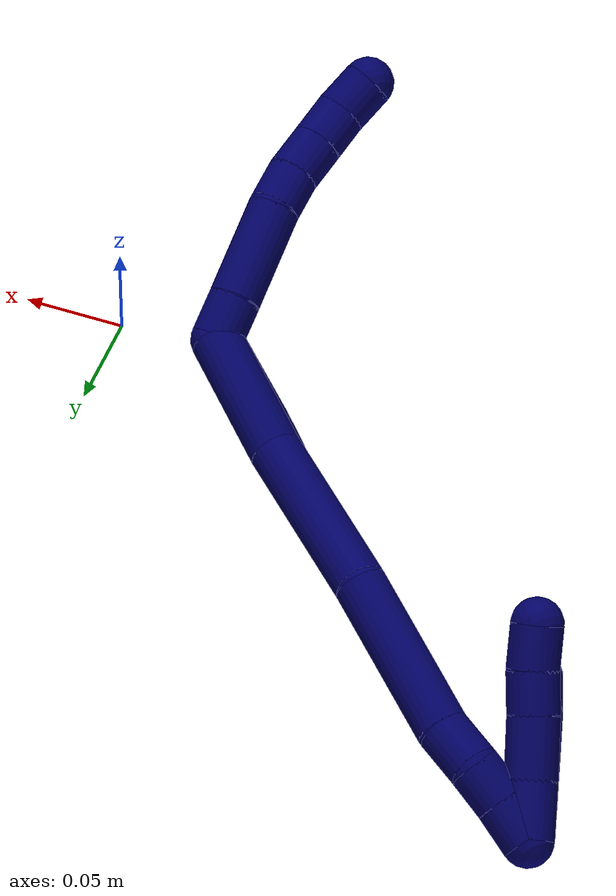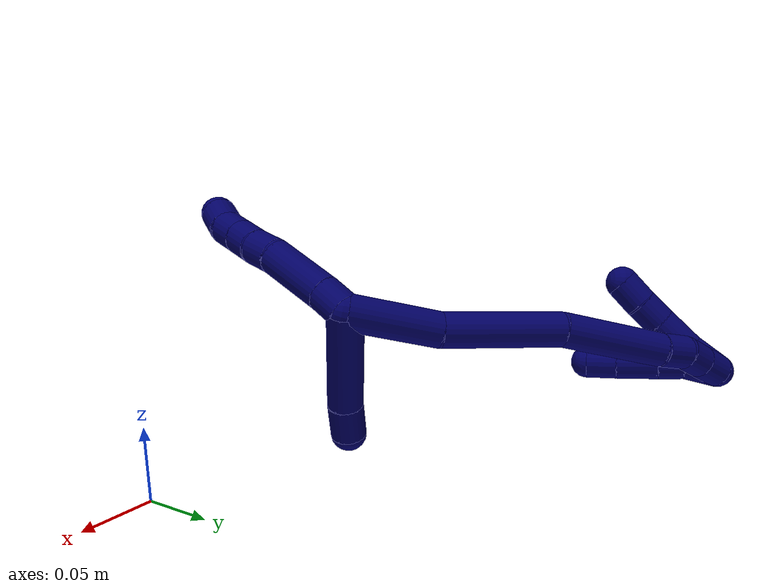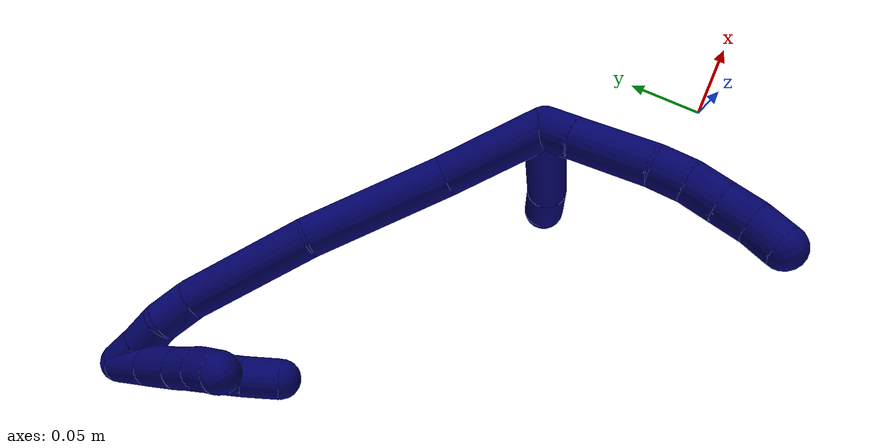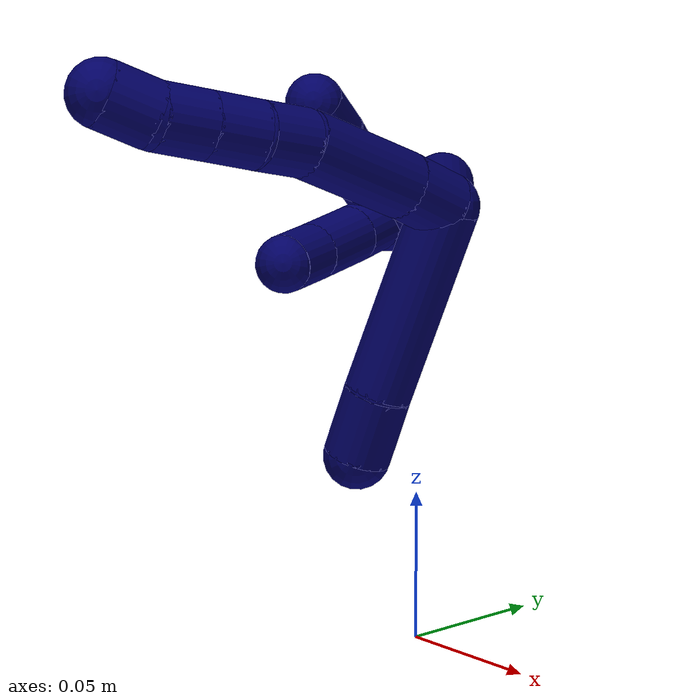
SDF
<sdf version="1.7">
 <world name="default">
  <model name="7">
   <static>0</static>
   <link name="7">
    <collision name="collision-cylinder-e_1_2_8">
     <pose>-0.002938 -0.007619 -0.006762 2.29666 -0.280786 -0.609184</pose>
     <geometry><cylinder><radius>0.0125</radius><length>0.021203</length></cylinder></geometry>
     <surface>
      <friction><ode><mu>1.16</mu><mu2>1.16</mu2><slip1>0</slip1><slip2>0</slip2></ode></friction>
      <contact><ode><kp>1e+06</kp><kd>1</kd><max_vel>0</max_vel><min_depth>0.001</min_depth></ode></contact>
     </surface>
    </collision>
    <visual name="visual-cylinder-e_1_2_8">
     <pose>-0.002938 -0.007619 -0.006762 2.29666 -0.280786 -0.609184</pose>
     <geometry><cylinder><radius>0.0125</radius><length>0.021203</length></cylinder></geometry>
     <material><ambient>0.003922 0 0.403922 1</ambient></material>
    </visual>
    <collision name="collision-cylinder-e_2_8_9">
     <pose>-0.01362 -0.031748 -0.029613 2.34329 -0.324069 -0.739459</pose>
     <geometry><cylinder><radius>0.0125</radius><length>0.048639</length></cylinder></geometry>
     <surface>
      <friction><ode><mu>1.16</mu><mu2>1.16</mu2><slip1>0</slip1><slip2>0</slip2></ode></friction>
      <contact><ode><kp>1e+06</kp><kd>1</kd><max_vel>0</max_vel><min_depth>0.001</min_depth></ode></contact>
     </surface>
    </collision>
    <visual name="visual-cylinder-e_2_8_9">
     <pose>-0.01362 -0.031748 -0.029613 2.34329 -0.324069 -0.739459</pose>
     <geometry><cylinder><radius>0.0125</radius><length>0.048639</length></cylinder></geometry>
     <material><ambient>0.003922 0 0.403922 1</ambient></material>
    </visual>
    <collision name="collision-cylinder-e_3_9_10">
     <pose>-0.026236 -0.054344 -0.051997 2.37307 -0.507812 -1.14113</pose>
     <geometry><cylinder><radius>0.0125</radius><length>0.020039</length></cylinder></geometry>
     <surface>
      <friction><ode><mu>1.16</mu><mu2>1.16</mu2><slip1>0</slip1><slip2>0</slip2></ode></friction>
      <contact><ode><kp>1e+06</kp><kd>1</kd><max_vel>0</max_vel><min_depth>0.001</min_depth></ode></contact>
     </surface>
    </collision>
    <visual name="visual-cylinder-e_3_9_10">
     <pose>-0.026236 -0.054344 -0.051997 2.37307 -0.507812 -1.14113</pose>
     <geometry><cylinder><radius>0.0125</radius><length>0.020039</length></cylinder></geometry>
     <material><ambient>0.003922 0 0.403922 1</ambient></material>
    </visual>
    <collision name="collision-cylinder-e_4_10_11">
     <pose>-0.036326 -0.067321 -0.063356 2.20455 -0.547848 -1.01364</pose>
     <geometry><cylinder><radius>0.0125</radius><length>0.020037</length></cylinder></geometry>
     <surface>
      <friction><ode><mu>1.16</mu><mu2>1.16</mu2><slip1>0</slip1><slip2>0</slip2></ode></friction>
      <contact><ode><kp>1e+06</kp><kd>1</kd><max_vel>0</max_vel><min_depth>0.001</min_depth></ode></contact>
     </surface>
    </collision>
    <visual name="visual-cylinder-e_4_10_11">
     <pose>-0.036326 -0.067321 -0.063356 2.20455 -0.547848 -1.01364</pose>
     <geometry><cylinder><radius>0.0125</radius><length>0.020037</length></cylinder></geometry>
     <material><ambient>0.003922 0 0.403922 1</ambient></material>
    </visual>
    <collision name="collision-cylinder-e_5_11_12">
     <pose>-0.046766 -0.081075 -0.073543 2.21203 -0.547556 -1.02108</pose>
     <geometry><cylinder><radius>0.0125</radius><length>0.02006</length></cylinder></geometry>
     <surface>
      <friction><ode><mu>1.16</mu><mu2>1.16</mu2><slip1>0</slip1><slip2>0</slip2></ode></friction>
      <contact><ode><kp>1e+06</kp><kd>1</kd><max_vel>0</max_vel><min_depth>0.001</min_depth></ode></contact>
     </surface>
    </collision>
    <visual name="visual-cylinder-e_5_11_12">
     <pose>-0.046766 -0.081075 -0.073543 2.21203 -0.547556 -1.02108</pose>
     <geometry><cylinder><radius>0.0125</radius><length>0.02006</length></cylinder></geometry>
     <material><ambient>0.003922 0 0.403922 1</ambient></material>
    </visual>
    <collision name="collision-cylinder-e_6_12_6">
     <pose>-0.055774 -0.096488 -0.082239 1.96668 -0.387904 -0.573692</pose>
     <geometry><cylinder><radius>0.0125</radius><length>0.020022</length></cylinder></geometry>
     <surface>
      <friction><ode><mu>1.16</mu><mu2>1.16</mu2><slip1>0</slip1><slip2>0</slip2></ode></friction>
      <contact><ode><kp>1e+06</kp><kd>1</kd><max_vel>0</max_vel><min_depth>0.001</min_depth></ode></contact>
     </surface>
    </collision>
    <visual name="visual-cylinder-e_6_12_6">
     <pose>-0.055774 -0.096488 -0.082239 1.96668 -0.387904 -0.573692</pose>
     <geometry><cylinder><radius>0.0125</radius><length>0.020022</length></cylinder></geometry>
     <material><ambient>0.003922 0 0.403922 1</ambient></material>
    </visual>
    <collision name="collision-cylinder-e_1_2_13">
     <pose>-0.032292 0.015575 0.009118 -1.04117 -1.06117 0.64898</pose>
     <geometry><cylinder><radius>0.0125</radius><length>0.073987</length></cylinder></geometry>
     <surface>
      <friction><ode><mu>1.16</mu><mu2>1.16</mu2><slip1>0</slip1><slip2>0</slip2></ode></friction>
      <contact><ode><kp>1e+06</kp><kd>1</kd><max_vel>0</max_vel><min_depth>0.001</min_depth></ode></contact>
     </surface>
    </collision>
    <visual name="visual-cylinder-e_1_2_13">
     <pose>-0.032292 0.015575 0.009118 -1.04117 -1.06117 0.64898</pose>
     <geometry><cylinder><radius>0.0125</radius><length>0.073987</length></cylinder></geometry>
     <material><ambient>0.003922 0 0.403922 1</ambient></material>
    </visual>
    <collision name="collision-cylinder-e_2_13_5">
     <pose>-0.075491 0.036758 0.022568 -0.91299 -0.994589 0.521009</pose>
     <geometry><cylinder><radius>0.0125</radius><length>0.026013</length></cylinder></geometry>
     <surface>
      <friction><ode><mu>1.16</mu><mu2>1.16</mu2><slip1>0</slip1><slip2>0</slip2></ode></friction>
      <contact><ode><kp>1e+06</kp><kd>1</kd><max_vel>0</max_vel><min_depth>0.001</min_depth></ode></contact>
     </surface>
    </collision>
    <visual name="visual-cylinder-e_2_13_5">
     <pose>-0.075491 0.036758 0.022568 -0.91299 -0.994589 0.521009</pose>
     <geometry><cylinder><radius>0.0125</radius><length>0.026013</length></cylinder></geometry>
     <material><ambient>0.003922 0 0.403922 1</ambient></material>
    </visual>
    <collision name="collision-cylinder-e_1_2_14">
     <pose>-0.000311 -0.000218 0.032419 0.006731 -0.009597 -3.2e-05</pose>
     <geometry><cylinder><radius>0.0125</radius><length>0.064843</length></cylinder></geometry>
     <surface>
      <friction><ode><mu>1.16</mu><mu2>1.16</mu2><slip1>0</slip1><slip2>0</slip2></ode></friction>
      <contact><ode><kp>1e+06</kp><kd>1</kd><max_vel>0</max_vel><min_depth>0.001</min_depth></ode></contact>
     </surface>
    </collision>
    <visual name="visual-cylinder-e_1_2_14">
     <pose>-0.000311 -0.000218 0.032419 0.006731 -0.009597 -3.2e-05</pose>
     <geometry><cylinder><radius>0.0125</radius><length>0.064843</length></cylinder></geometry>
     <material><ambient>0.003922 0 0.403922 1</ambient></material>
    </visual>
    <collision name="collision-cylinder-e_2_14_15">
     <pose>0.004638 -0.006735 0.107867 0.145342 0.120383 0.008774</pose>
     <geometry><cylinder><radius>0.0125</radius><length>0.087608</length></cylinder></geometry>
     <surface>
      <friction><ode><mu>1.16</mu><mu2>1.16</mu2><slip1>0</slip1><slip2>0</slip2></ode></friction>
      <contact><ode><kp>1e+06</kp><kd>1</kd><max_vel>0</max_vel><min_depth>0.001</min_depth></ode></contact>
     </surface>
    </collision>
    <visual name="visual-cylinder-e_2_14_15">
     <pose>0.004638 -0.006735 0.107867 0.145342 0.120383 0.008774</pose>
     <geometry><cylinder><radius>0.0125</radius><length>0.087608</length></cylinder></geometry>
     <material><ambient>0.003922 0 0.403922 1</ambient></material>
    </visual>
    <collision name="collision-cylinder-e_3_15_16">
     <pose>0.008351 -0.01396 0.191862 0.022637 -0.037757 -0.000427</pose>
     <geometry><cylinder><radius>0.0125</radius><length>0.082013</length></cylinder></geometry>
     <surface>
      <friction><ode><mu>1.16</mu><mu2>1.16</mu2><slip1>0</slip1><slip2>0</slip2></ode></friction>
      <contact><ode><kp>1e+06</kp><kd>1</kd><max_vel>0</max_vel><min_depth>0.001</min_depth></ode></contact>
     </surface>
    </collision>
    <visual name="visual-cylinder-e_3_15_16">
     <pose>0.008351 -0.01396 0.191862 0.022637 -0.037757 -0.000427</pose>
     <geometry><cylinder><radius>0.0125</radius><length>0.082013</length></cylinder></geometry>
     <material><ambient>0.003922 0 0.403922 1</ambient></material>
    </visual>
    <collision name="collision-cylinder-e_4_16_17">
     <pose>0.005506 -0.016867 0.244304 0.170803 -0.110888 -0.009503</pose>
     <geometry><cylinder><radius>0.0125</radius><length>0.023434</length></cylinder></geometry>
     <surface>
      <friction><ode><mu>1.16</mu><mu2>1.16</mu2><slip1>0</slip1><slip2>0</slip2></ode></friction>
      <contact><ode><kp>1e+06</kp><kd>1</kd><max_vel>0</max_vel><min_depth>0.001</min_depth></ode></contact>
     </surface>
    </collision>
    <visual name="visual-cylinder-e_4_16_17">
     <pose>0.005506 -0.016867 0.244304 0.170803 -0.110888 -0.009503</pose>
     <geometry><cylinder><radius>0.0125</radius><length>0.023434</length></cylinder></geometry>
     <material><ambient>0.003922 0 0.403922 1</ambient></material>
    </visual>
    <collision name="collision-cylinder-e_5_17_18">
     <pose>0.000439 -0.019006 0.26543 0.016456 -0.372441 -0.0031</pose>
     <geometry><cylinder><radius>0.0125</radius><length>0.020723</length></cylinder></geometry>
     <surface>
      <friction><ode><mu>1.16</mu><mu2>1.16</mu2><slip1>0</slip1><slip2>0</slip2></ode></friction>
      <contact><ode><kp>1e+06</kp><kd>1</kd><max_vel>0</max_vel><min_depth>0.001</min_depth></ode></contact>
     </surface>
    </collision>
    <visual name="visual-cylinder-e_5_17_18">
     <pose>0.000439 -0.019006 0.26543 0.016456 -0.372441 -0.0031</pose>
     <geometry><cylinder><radius>0.0125</radius><length>0.020723</length></cylinder></geometry>
     <material><ambient>0.003922 0 0.403922 1</ambient></material>
    </visual>
    <collision name="collision-cylinder-e_6_18_1">
     <pose>-0.006752 -0.018771 0.2852 -0.038886 -0.325724 0.006391</pose>
     <geometry><cylinder><radius>0.0125</radius><length>0.021379</length></cylinder></geometry>
     <surface>
      <friction><ode><mu>1.16</mu><mu2>1.16</mu2><slip1>0</slip1><slip2>0</slip2></ode></friction>
      <contact><ode><kp>1e+06</kp><kd>1</kd><max_vel>0</max_vel><min_depth>0.001</min_depth></ode></contact>
     </surface>
    </collision>
    <visual name="visual-cylinder-e_6_18_1">
     <pose>-0.006752 -0.018771 0.2852 -0.038886 -0.325724 0.006391</pose>
     <geometry><cylinder><radius>0.0125</radius><length>0.021379</length></cylinder></geometry>
     <material><ambient>0.003922 0 0.403922 1</ambient></material>
    </visual>
    <collision name="collision-cylinder-e_1_1_19">
     <pose>-0.014704 -0.022314 0.284778 2.7841 -0.382886 -1.64096</pose>
     <geometry><cylinder><radius>0.0125</radius><length>0.024262</length></cylinder></geometry>
     <surface>
      <friction><ode><mu>1.16</mu><mu2>1.16</mu2><slip1>0</slip1><slip2>0</slip2></ode></friction>
      <contact><ode><kp>1e+06</kp><kd>1</kd><max_vel>0</max_vel><min_depth>0.001</min_depth></ode></contact>
     </surface>
    </collision>
    <visual name="visual-cylinder-e_1_1_19">
     <pose>-0.014704 -0.022314 0.284778 2.7841 -0.382886 -1.64096</pose>
     <geometry><cylinder><radius>0.0125</radius><length>0.024262</length></cylinder></geometry>
     <material><ambient>0.003922 0 0.403922 1</ambient></material>
    </visual>
    <collision name="collision-cylinder-e_2_19_20">
     <pose>-0.024896 -0.027646 0.266001 2.97397 -0.595447 -2.60714</pose>
     <geometry><cylinder><radius>0.0125</radius><length>0.02018</length></cylinder></geometry>
     <surface>
      <friction><ode><mu>1.16</mu><mu2>1.16</mu2><slip1>0</slip1><slip2>0</slip2></ode></friction>
      <contact><ode><kp>1e+06</kp><kd>1</kd><max_vel>0</max_vel><min_depth>0.001</min_depth></ode></contact>
     </surface>
    </collision>
    <visual name="visual-cylinder-e_2_19_20">
     <pose>-0.024896 -0.027646 0.266001 2.97397 -0.595447 -2.60714</pose>
     <geometry><cylinder><radius>0.0125</radius><length>0.02018</length></cylinder></geometry>
     <material><ambient>0.003922 0 0.403922 1</ambient></material>
    </visual>
    <collision name="collision-cylinder-e_3_20_21">
     <pose>-0.039289 -0.031485 0.244476 2.95956 -0.573832 -2.54162</pose>
     <geometry><cylinder><radius>0.0125</radius><length>0.032176</length></cylinder></geometry>
     <surface>
      <friction><ode><mu>1.16</mu><mu2>1.16</mu2><slip1>0</slip1><slip2>0</slip2></ode></friction>
      <contact><ode><kp>1e+06</kp><kd>1</kd><max_vel>0</max_vel><min_depth>0.001</min_depth></ode></contact>
     </surface>
    </collision>
    <visual name="visual-cylinder-e_3_20_21">
     <pose>-0.039289 -0.031485 0.244476 2.95956 -0.573832 -2.54162</pose>
     <geometry><cylinder><radius>0.0125</radius><length>0.032176</length></cylinder></geometry>
     <material><ambient>0.003922 0 0.403922 1</ambient></material>
    </visual>
    <collision name="collision-cylinder-e_4_21_4">
     <pose>-0.053788 -0.035646 0.221164 2.97214 -0.51577 -2.51855</pose>
     <geometry><cylinder><radius>0.0125</radius><length>0.023382</length></cylinder></geometry>
     <surface>
      <friction><ode><mu>1.16</mu><mu2>1.16</mu2><slip1>0</slip1><slip2>0</slip2></ode></friction>
      <contact><ode><kp>1e+06</kp><kd>1</kd><max_vel>0</max_vel><min_depth>0.001</min_depth></ode></contact>
     </surface>
    </collision>
    <visual name="visual-cylinder-e_4_21_4">
     <pose>-0.053788 -0.035646 0.221164 2.97214 -0.51577 -2.51855</pose>
     <geometry><cylinder><radius>0.0125</radius><length>0.023382</length></cylinder></geometry>
     <material><ambient>0.003922 0 0.403922 1</ambient></material>
    </visual>
    <collision name="collision-cylinder-e_1_1_22">
     <pose>-0.010588 -0.026083 0.283783 2.55272 -0.029962 -0.098729</pose>
     <geometry><cylinder><radius>0.0125</radius><length>0.02776</length></cylinder></geometry>
     <surface>
      <friction><ode><mu>1.16</mu><mu2>1.16</mu2><slip1>0</slip1><slip2>0</slip2></ode></friction>
      <contact><ode><kp>1e+06</kp><kd>1</kd><max_vel>0</max_vel><min_depth>0.001</min_depth></ode></contact>
     </surface>
    </collision>
    <visual name="visual-cylinder-e_1_1_22">
     <pose>-0.010588 -0.026083 0.283783 2.55272 -0.029962 -0.098729</pose>
     <geometry><cylinder><radius>0.0125</radius><length>0.02776</length></cylinder></geometry>
     <material><ambient>0.003922 0 0.403922 1</ambient></material>
    </visual>
    <collision name="collision-cylinder-e_2_22_23">
     <pose>-0.009682 -0.042882 0.260253 2.49279 0.087638 0.259313</pose>
     <geometry><cylinder><radius>0.0125</radius><length>0.030217</length></cylinder></geometry>
     <surface>
      <friction><ode><mu>1.16</mu><mu2>1.16</mu2><slip1>0</slip1><slip2>0</slip2></ode></friction>
      <contact><ode><kp>1e+06</kp><kd>1</kd><max_vel>0</max_vel><min_depth>0.001</min_depth></ode></contact>
     </surface>
    </collision>
    <visual name="visual-cylinder-e_2_22_23">
     <pose>-0.009682 -0.042882 0.260253 2.49279 0.087638 0.259313</pose>
     <geometry><cylinder><radius>0.0125</radius><length>0.030217</length></cylinder></geometry>
     <material><ambient>0.003922 0 0.403922 1</ambient></material>
    </visual>
    <collision name="collision-cylinder-e_3_23_24">
     <pose>-0.006877 -0.057851 0.23987 2.53079 0.143738 0.449015</pose>
     <geometry><cylinder><radius>0.0125</radius><length>0.0207</length></cylinder></geometry>
     <surface>
      <friction><ode><mu>1.16</mu><mu2>1.16</mu2><slip1>0</slip1><slip2>0</slip2></ode></friction>
      <contact><ode><kp>1e+06</kp><kd>1</kd><max_vel>0</max_vel><min_depth>0.001</min_depth></ode></contact>
     </surface>
    </collision>
    <visual name="visual-cylinder-e_3_23_24">
     <pose>-0.006877 -0.057851 0.23987 2.53079 0.143738 0.449015</pose>
     <geometry><cylinder><radius>0.0125</radius><length>0.0207</length></cylinder></geometry>
     <material><ambient>0.003922 0 0.403922 1</ambient></material>
    </visual>
    <collision name="collision-cylinder-e_4_24_3">
     <pose>-0.00429 -0.070796 0.223576 2.41175 0.103736 0.270125</pose>
     <geometry><cylinder><radius>0.0125</radius><length>0.021324</length></cylinder></geometry>
     <surface>
      <friction><ode><mu>1.16</mu><mu2>1.16</mu2><slip1>0</slip1><slip2>0</slip2></ode></friction>
      <contact><ode><kp>1e+06</kp><kd>1</kd><max_vel>0</max_vel><min_depth>0.001</min_depth></ode></contact>
     </surface>
    </collision>
    <visual name="visual-cylinder-e_4_24_3">
     <pose>-0.00429 -0.070796 0.223576 2.41175 0.103736 0.270125</pose>
     <geometry><cylinder><radius>0.0125</radius><length>0.021324</length></cylinder></geometry>
     <material><ambient>0.003922 0 0.403922 1</ambient></material>
    </visual>
    <collision name="collision-sphere-3">
     <pose>-0.003186 -0.077867 0.215672 0 -0 0</pose>
     <geometry><sphere><radius>0.0125</radius></sphere></geometry>
     <surface>
      <friction><ode><mu>1.16</mu><mu2>1.16</mu2><slip1>0</slip1><slip2>0</slip2></ode></friction>
      <contact><ode><kp>1e+06</kp><kd>1</kd><max_vel>0</max_vel><min_depth>0.001</min_depth></ode></contact>
     </surface>
    </collision>
    <visual name="visual-sphere-3">
     <pose>-0.003186 -0.077867 0.215672 0 -0 0</pose>
     <geometry><sphere><radius>0.0125</radius></sphere></geometry>
     <material><ambient>0.003922 0 0.403922 1</ambient></material>
    </visual>
    <collision name="collision-sphere-24">
     <pose>-0.005394 -0.063726 0.231479 0 -0 0</pose>
     <geometry><sphere><radius>0.0125</radius></sphere></geometry>
     <surface>
      <friction><ode><mu>1.16</mu><mu2>1.16</mu2><slip1>0</slip1><slip2>0</slip2></ode></friction>
      <contact><ode><kp>1e+06</kp><kd>1</kd><max_vel>0</max_vel><min_depth>0.001</min_depth></ode></contact>
     </surface>
    </collision>
    <visual name="visual-sphere-24">
     <pose>-0.005394 -0.063726 0.231479 0 -0 0</pose>
     <geometry><sphere><radius>0.0125</radius></sphere></geometry>
     <material><ambient>0.003922 0 0.403922 1</ambient></material>
    </visual>
    <collision name="collision-sphere-23">
     <pose>-0.008359 -0.051976 0.248261 0 -0 0</pose>
     <geometry><sphere><radius>0.0125</radius></sphere></geometry>
     <surface>
      <friction><ode><mu>1.16</mu><mu2>1.16</mu2><slip1>0</slip1><slip2>0</slip2></ode></friction>
      <contact><ode><kp>1e+06</kp><kd>1</kd><max_vel>0</max_vel><min_depth>0.001</min_depth></ode></contact>
     </surface>
    </collision>
    <visual name="visual-sphere-23">
     <pose>-0.008359 -0.051976 0.248261 0 -0 0</pose>
     <geometry><sphere><radius>0.0125</radius></sphere></geometry>
     <material><ambient>0.003922 0 0.403922 1</ambient></material>
    </visual>
    <collision name="collision-sphere-22">
     <pose>-0.011004 -0.033788 0.272246 0 -0 0</pose>
     <geometry><sphere><radius>0.0125</radius></sphere></geometry>
     <surface>
      <friction><ode><mu>1.16</mu><mu2>1.16</mu2><slip1>0</slip1><slip2>0</slip2></ode></friction>
      <contact><ode><kp>1e+06</kp><kd>1</kd><max_vel>0</max_vel><min_depth>0.001</min_depth></ode></contact>
     </surface>
    </collision>
    <visual name="visual-sphere-22">
     <pose>-0.011004 -0.033788 0.272246 0 -0 0</pose>
     <geometry><sphere><radius>0.0125</radius></sphere></geometry>
     <material><ambient>0.003922 0 0.403922 1</ambient></material>
    </visual>
    <collision name="collision-sphere-4">
     <pose>-0.059554 -0.037361 0.211139 0 -0 0</pose>
     <geometry><sphere><radius>0.0125</radius></sphere></geometry>
     <surface>
      <friction><ode><mu>1.16</mu><mu2>1.16</mu2><slip1>0</slip1><slip2>0</slip2></ode></friction>
      <contact><ode><kp>1e+06</kp><kd>1</kd><max_vel>0</max_vel><min_depth>0.001</min_depth></ode></contact>
     </surface>
    </collision>
    <visual name="visual-sphere-4">
     <pose>-0.059554 -0.037361 0.211139 0 -0 0</pose>
     <geometry><sphere><radius>0.0125</radius></sphere></geometry>
     <material><ambient>0.003922 0 0.403922 1</ambient></material>
    </visual>
    <collision name="collision-sphere-21">
     <pose>-0.048022 -0.033931 0.231188 0 -0 0</pose>
     <geometry><sphere><radius>0.0125</radius></sphere></geometry>
     <surface>
      <friction><ode><mu>1.16</mu><mu2>1.16</mu2><slip1>0</slip1><slip2>0</slip2></ode></friction>
      <contact><ode><kp>1e+06</kp><kd>1</kd><max_vel>0</max_vel><min_depth>0.001</min_depth></ode></contact>
     </surface>
    </collision>
    <visual name="visual-sphere-21">
     <pose>-0.048022 -0.033931 0.231188 0 -0 0</pose>
     <geometry><sphere><radius>0.0125</radius></sphere></geometry>
     <material><ambient>0.003922 0 0.403922 1</ambient></material>
    </visual>
    <collision name="collision-sphere-20">
     <pose>-0.030555 -0.029039 0.257765 0 -0 0</pose>
     <geometry><sphere><radius>0.0125</radius></sphere></geometry>
     <surface>
      <friction><ode><mu>1.16</mu><mu2>1.16</mu2><slip1>0</slip1><slip2>0</slip2></ode></friction>
      <contact><ode><kp>1e+06</kp><kd>1</kd><max_vel>0</max_vel><min_depth>0.001</min_depth></ode></contact>
     </surface>
    </collision>
    <visual name="visual-sphere-20">
     <pose>-0.030555 -0.029039 0.257765 0 -0 0</pose>
     <geometry><sphere><radius>0.0125</radius></sphere></geometry>
     <material><ambient>0.003922 0 0.403922 1</ambient></material>
    </visual>
    <collision name="collision-sphere-12">
     <pose>-0.051988 -0.087937 -0.078665 0 -0 0</pose>
     <geometry><sphere><radius>0.0125</radius></sphere></geometry>
     <surface>
      <friction><ode><mu>1.16</mu><mu2>1.16</mu2><slip1>0</slip1><slip2>0</slip2></ode></friction>
      <contact><ode><kp>1e+06</kp><kd>1</kd><max_vel>0</max_vel><min_depth>0.001</min_depth></ode></contact>
     </surface>
    </collision>
    <visual name="visual-sphere-12">
     <pose>-0.051988 -0.087937 -0.078665 0 -0 0</pose>
     <geometry><sphere><radius>0.0125</radius></sphere></geometry>
     <material><ambient>0.003922 0 0.403922 1</ambient></material>
    </visual>
    <collision name="collision-sphere-11">
     <pose>-0.041544 -0.074212 -0.06842 0 -0 0</pose>
     <geometry><sphere><radius>0.0125</radius></sphere></geometry>
     <surface>
      <friction><ode><mu>1.16</mu><mu2>1.16</mu2><slip1>0</slip1><slip2>0</slip2></ode></friction>
      <contact><ode><kp>1e+06</kp><kd>1</kd><max_vel>0</max_vel><min_depth>0.001</min_depth></ode></contact>
     </surface>
    </collision>
    <visual name="visual-sphere-11">
     <pose>-0.041544 -0.074212 -0.06842 0 -0 0</pose>
     <geometry><sphere><radius>0.0125</radius></sphere></geometry>
     <material><ambient>0.003922 0 0.403922 1</ambient></material>
    </visual>
    <collision name="collision-sphere-10">
     <pose>-0.031108 -0.060429 -0.058291 0 -0 0</pose>
     <geometry><sphere><radius>0.0125</radius></sphere></geometry>
     <surface>
      <friction><ode><mu>1.16</mu><mu2>1.16</mu2><slip1>0</slip1><slip2>0</slip2></ode></friction>
      <contact><ode><kp>1e+06</kp><kd>1</kd><max_vel>0</max_vel><min_depth>0.001</min_depth></ode></contact>
     </surface>
    </collision>
    <visual name="visual-sphere-10">
     <pose>-0.031108 -0.060429 -0.058291 0 -0 0</pose>
     <geometry><sphere><radius>0.0125</radius></sphere></geometry>
     <material><ambient>0.003922 0 0.403922 1</ambient></material>
    </visual>
    <collision name="collision-sphere-9">
     <pose>-0.021364 -0.048258 -0.045702 0 -0 0</pose>
     <geometry><sphere><radius>0.0125</radius></sphere></geometry>
     <surface>
      <friction><ode><mu>1.16</mu><mu2>1.16</mu2><slip1>0</slip1><slip2>0</slip2></ode></friction>
      <contact><ode><kp>1e+06</kp><kd>1</kd><max_vel>0</max_vel><min_depth>0.001</min_depth></ode></contact>
     </surface>
    </collision>
    <visual name="visual-sphere-9">
     <pose>-0.021364 -0.048258 -0.045702 0 -0 0</pose>
     <geometry><sphere><radius>0.0125</radius></sphere></geometry>
     <material><ambient>0.003922 0 0.403922 1</ambient></material>
    </visual>
    <collision name="collision-sphere-2">
     <geometry><sphere><radius>0.0125</radius></sphere></geometry>
     <surface>
      <friction><ode><mu>1.16</mu><mu2>1.16</mu2><slip1>0</slip1><slip2>0</slip2></ode></friction>
      <contact><ode><kp>1e+06</kp><kd>1</kd><max_vel>0</max_vel><min_depth>0.001</min_depth></ode></contact>
     </surface>
    </collision>
    <visual name="visual-sphere-2">
     <geometry><sphere><radius>0.0125</radius></sphere></geometry>
     <material><ambient>0.003922 0 0.403922 1</ambient></material>
    </visual>
    <collision name="collision-sphere-19">
     <pose>-0.019237 -0.026252 0.274237 0 -0 0</pose>
     <geometry><sphere><radius>0.0125</radius></sphere></geometry>
     <surface>
      <friction><ode><mu>1.16</mu><mu2>1.16</mu2><slip1>0</slip1><slip2>0</slip2></ode></friction>
      <contact><ode><kp>1e+06</kp><kd>1</kd><max_vel>0</max_vel><min_depth>0.001</min_depth></ode></contact>
     </surface>
    </collision>
    <visual name="visual-sphere-19">
     <pose>-0.019237 -0.026252 0.274237 0 -0 0</pose>
     <geometry><sphere><radius>0.0125</radius></sphere></geometry>
     <material><ambient>0.003922 0 0.403922 1</ambient></material>
    </visual>
    <collision name="collision-sphere-8">
     <pose>-0.005876 -0.015238 -0.013523 0 -0 0</pose>
     <geometry><sphere><radius>0.0125</radius></sphere></geometry>
     <surface>
      <friction><ode><mu>1.16</mu><mu2>1.16</mu2><slip1>0</slip1><slip2>0</slip2></ode></friction>
      <contact><ode><kp>1e+06</kp><kd>1</kd><max_vel>0</max_vel><min_depth>0.001</min_depth></ode></contact>
     </surface>
    </collision>
    <visual name="visual-sphere-8">
     <pose>-0.005876 -0.015238 -0.013523 0 -0 0</pose>
     <geometry><sphere><radius>0.0125</radius></sphere></geometry>
     <material><ambient>0.003922 0 0.403922 1</ambient></material>
    </visual>
    <collision name="collision-sphere-6">
     <pose>-0.059561 -0.105038 -0.085812 0 -0 0</pose>
     <geometry><sphere><radius>0.0125</radius></sphere></geometry>
     <surface>
      <friction><ode><mu>1.16</mu><mu2>1.16</mu2><slip1>0</slip1><slip2>0</slip2></ode></friction>
      <contact><ode><kp>1e+06</kp><kd>1</kd><max_vel>0</max_vel><min_depth>0.001</min_depth></ode></contact>
     </surface>
    </collision>
    <visual name="visual-sphere-6">
     <pose>-0.059561 -0.105038 -0.085812 0 -0 0</pose>
     <geometry><sphere><radius>0.0125</radius></sphere></geometry>
     <material><ambient>0.003922 0 0.403922 1</ambient></material>
    </visual>
    <collision name="collision-sphere-13">
     <pose>-0.064585 0.03115 0.018235 0 -0 0</pose>
     <geometry><sphere><radius>0.0125</radius></sphere></geometry>
     <surface>
      <friction><ode><mu>1.16</mu><mu2>1.16</mu2><slip1>0</slip1><slip2>0</slip2></ode></friction>
      <contact><ode><kp>1e+06</kp><kd>1</kd><max_vel>0</max_vel><min_depth>0.001</min_depth></ode></contact>
     </surface>
    </collision>
    <visual name="visual-sphere-13">
     <pose>-0.064585 0.03115 0.018235 0 -0 0</pose>
     <geometry><sphere><radius>0.0125</radius></sphere></geometry>
     <material><ambient>0.003922 0 0.403922 1</ambient></material>
    </visual>
    <collision name="collision-sphere-5">
     <pose>-0.086398 0.042365 0.026901 0 -0 0</pose>
     <geometry><sphere><radius>0.0125</radius></sphere></geometry>
     <surface>
      <friction><ode><mu>1.16</mu><mu2>1.16</mu2><slip1>0</slip1><slip2>0</slip2></ode></friction>
      <contact><ode><kp>1e+06</kp><kd>1</kd><max_vel>0</max_vel><min_depth>0.001</min_depth></ode></contact>
     </surface>
    </collision>
    <visual name="visual-sphere-5">
     <pose>-0.086398 0.042365 0.026901 0 -0 0</pose>
     <geometry><sphere><radius>0.0125</radius></sphere></geometry>
     <material><ambient>0.003922 0 0.403922 1</ambient></material>
    </visual>
    <collision name="collision-sphere-14">
     <pose>-0.000622 -0.000436 0.064839 0 -0 0</pose>
     <geometry><sphere><radius>0.0125</radius></sphere></geometry>
     <surface>
      <friction><ode><mu>1.16</mu><mu2>1.16</mu2><slip1>0</slip1><slip2>0</slip2></ode></friction>
      <contact><ode><kp>1e+06</kp><kd>1</kd><max_vel>0</max_vel><min_depth>0.001</min_depth></ode></contact>
     </surface>
    </collision>
    <visual name="visual-sphere-14">
     <pose>-0.000622 -0.000436 0.064839 0 -0 0</pose>
     <geometry><sphere><radius>0.0125</radius></sphere></geometry>
     <material><ambient>0.003922 0 0.403922 1</ambient></material>
    </visual>
    <collision name="collision-sphere-15">
     <pose>0.009899 -0.013033 0.150895 0 -0 0</pose>
     <geometry><sphere><radius>0.0125</radius></sphere></geometry>
     <surface>
      <friction><ode><mu>1.16</mu><mu2>1.16</mu2><slip1>0</slip1><slip2>0</slip2></ode></friction>
      <contact><ode><kp>1e+06</kp><kd>1</kd><max_vel>0</max_vel><min_depth>0.001</min_depth></ode></contact>
     </surface>
    </collision>
    <visual name="visual-sphere-15">
     <pose>0.009899 -0.013033 0.150895 0 -0 0</pose>
     <geometry><sphere><radius>0.0125</radius></sphere></geometry>
     <material><ambient>0.003922 0 0.403922 1</ambient></material>
    </visual>
    <collision name="collision-sphere-16">
     <pose>0.006803 -0.014888 0.232829 0 -0 0</pose>
     <geometry><sphere><radius>0.0125</radius></sphere></geometry>
     <surface>
      <friction><ode><mu>1.16</mu><mu2>1.16</mu2><slip1>0</slip1><slip2>0</slip2></ode></friction>
      <contact><ode><kp>1e+06</kp><kd>1</kd><max_vel>0</max_vel><min_depth>0.001</min_depth></ode></contact>
     </surface>
    </collision>
    <visual name="visual-sphere-16">
     <pose>0.006803 -0.014888 0.232829 0 -0 0</pose>
     <geometry><sphere><radius>0.0125</radius></sphere></geometry>
     <material><ambient>0.003922 0 0.403922 1</ambient></material>
    </visual>
    <collision name="collision-sphere-17">
     <pose>0.00421 -0.018847 0.25578 0 -0 0</pose>
     <geometry><sphere><radius>0.0125</radius></sphere></geometry>
     <surface>
      <friction><ode><mu>1.16</mu><mu2>1.16</mu2><slip1>0</slip1><slip2>0</slip2></ode></friction>
      <contact><ode><kp>1e+06</kp><kd>1</kd><max_vel>0</max_vel><min_depth>0.001</min_depth></ode></contact>
     </surface>
    </collision>
    <visual name="visual-sphere-17">
     <pose>0.00421 -0.018847 0.25578 0 -0 0</pose>
     <geometry><sphere><radius>0.0125</radius></sphere></geometry>
     <material><ambient>0.003922 0 0.403922 1</ambient></material>
    </visual>
    <collision name="collision-sphere-18">
     <pose>-0.003331 -0.019164 0.27508 0 -0 0</pose>
     <geometry><sphere><radius>0.0125</radius></sphere></geometry>
     <surface>
      <friction><ode><mu>1.16</mu><mu2>1.16</mu2><slip1>0</slip1><slip2>0</slip2></ode></friction>
      <contact><ode><kp>1e+06</kp><kd>1</kd><max_vel>0</max_vel><min_depth>0.001</min_depth></ode></contact>
     </surface>
    </collision>
    <visual name="visual-sphere-18">
     <pose>-0.003331 -0.019164 0.27508 0 -0 0</pose>
     <geometry><sphere><radius>0.0125</radius></sphere></geometry>
     <material><ambient>0.003922 0 0.403922 1</ambient></material>
    </visual>
    <collision name="collision-sphere-1">
     <pose>-0.010172 -0.018377 0.295319 0 -0 0</pose>
     <geometry><sphere><radius>0.0125</radius></sphere></geometry>
     <surface>
      <friction><ode><mu>1.16</mu><mu2>1.16</mu2><slip1>0</slip1><slip2>0</slip2></ode></friction>
      <contact><ode><kp>1e+06</kp><kd>1</kd><max_vel>0</max_vel><min_depth>0.001</min_depth></ode></contact>
     </surface>
    </collision>
    <visual name="visual-sphere-1">
     <pose>-0.010172 -0.018377 0.295319 0 -0 0</pose>
     <geometry><sphere><radius>0.0125</radius></sphere></geometry>
     <material><ambient>0.003922 0 0.403922 1</ambient></material>
    </visual>
    <inertial>
     <pose>-0.015363 -0.021608 0.119525 0 -0 0</pose>
     <mass>0.75</mass>
     <inertia><ixx>0.00015</ixx><ixy>0</ixy><ixz>0</ixz><iyy>0.00015</iyy><iyz>0</iyz><izz>6.1e-05</izz></inertia>
    </inertial>
   </link>
   <pose>-0.087841 0.094496 0.119786 -1.91118 -0.746722 1.04864</pose>
  </model>
 </world>
</sdf>
